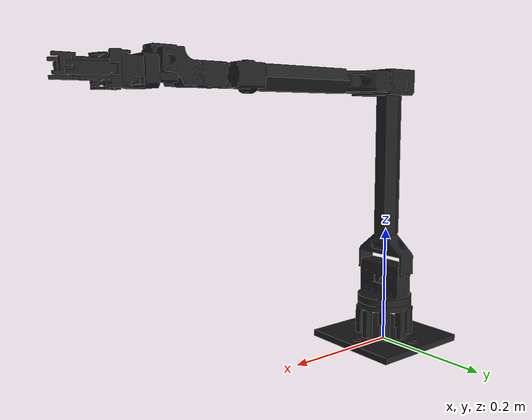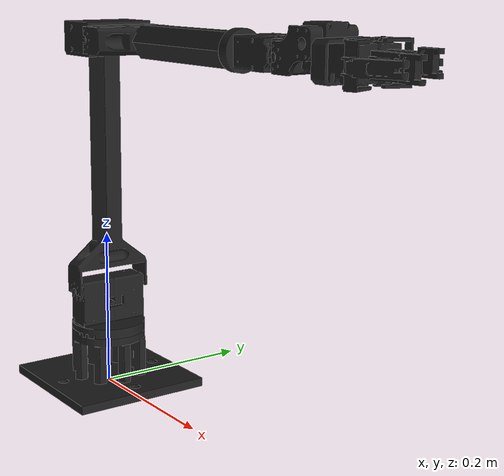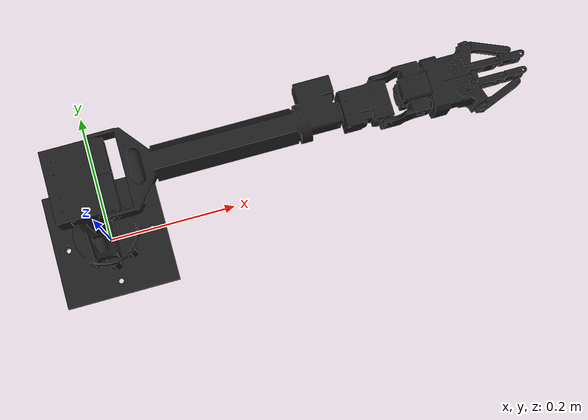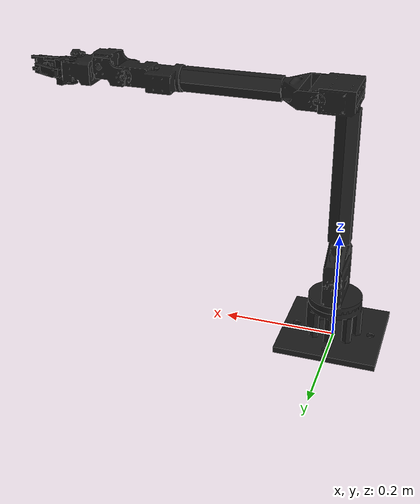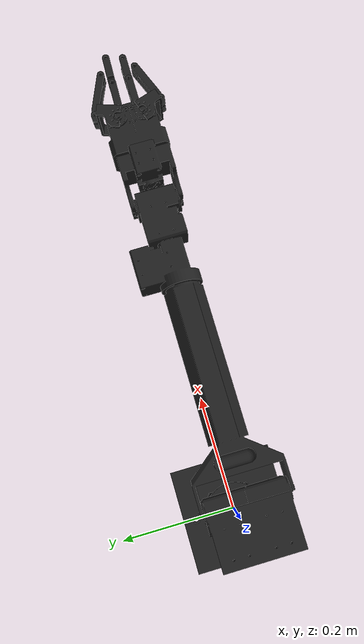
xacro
<?xml version="1.0"?>
<robot name="xm540arm" xmlns:xacro="http://ros.org/wiki/xacro">

  <xacro:arg name="robot_name" default = "xm540arm"/>
  <xacro:arg name="base_link_frame" default="base_link"/>
  <xacro:arg name="show_ar_tag" default="false"/>
  <xacro:arg name="show_gripper_bar" default="true"/>
  <xacro:arg name="show_gripper_fingers" default="false"/>
  <xacro:arg name="use_world_frame" default="true"/>
  <xacro:arg name="external_urdf_loc" default=""/>
  <xacro:arg name="load_gazebo_configs" default="false"/>

  <xacro:property name="urdf_loc" value="$(arg external_urdf_loc)"/>
  <xacro:property name="pi_offset" value="0.00001"/>

  <xacro:if value="$(arg load_gazebo_configs)">
    <xacro:include filename="$(find interbotix_xsarm_gazebo)/config/interbotix_texture.gazebo"/>
  </xacro:if>

  <material name="interbotix_black">
    <texture filename="package://interbotix_xsarm_descriptions/meshes/interbotix_black.png"/>
  </material>

  <xacro:if value="$(arg use_world_frame)">
    <link name="world"/>
    <joint name="fixed" type="fixed">
      <parent link="world"/>
      <child link="$(arg robot_name)/$(arg base_link_frame)"/>
    </joint>
  </xacro:if>

  <link name="$(arg robot_name)/$(arg base_link_frame)">
    <visual>
      <origin rpy="0 0 ${pi/2}" xyz="0.08895 -0.08895 0"/>
      <geometry>
        <mesh filename="package://interbotix_xsarm_descriptions/meshes/xm540arm_meshes/xm540arm_1_base.stl" scale="0.001 0.001 0.001"/>
      </geometry>
      <material name="interbotix_black"/>
    </visual>
    <collision>
      <origin rpy="0 0 ${pi/2}" xyz="0.08895 -0.08895 0"/>
      <geometry>
        <mesh filename="package://interbotix_xsarm_descriptions/meshes/xm540arm_meshes/xm540arm_1_base.stl" scale="0.001 0.001 0.001"/>
      </geometry>
    </collision>
    <inertial>
      <origin rpy="0 0 ${pi/2}" xyz="-0.0534774000 -0.0005625750 0.0205961000"/>
      <mass value="0.969034" />
      <inertia ixx="0.0060240000" iyy="0.0017000000" izz="0.0071620000" ixy="0.0000471300" ixz="0.0000038510" iyz="-0.0000841500" />
    </inertial>
  </link>

  <joint name="waist" type="revolute">
    <axis xyz="0 0 1"/>
    <limit effort="10" lower="${-pi + pi_offset}" upper="${pi - pi_offset}" velocity="${pi}"/>
    <origin rpy="0 0 0" xyz="0 0 0.079"/>
    <parent link="$(arg robot_name)/$(arg base_link_frame)"/>
    <child link="$(arg robot_name)/shoulder_link"/>
    <dynamics friction="0.1"/>
  </joint>

  <transmission name="trans_waist">
    <type>transmission_interface/SimpleTransmission</type>
    <joint name="waist">
      <hardwareInterface>hardware_interface/EffortJointInterface</hardwareInterface>
    </joint>
    <actuator name="waist_motor">
      <mechanicalReduction>1</mechanicalReduction>
    </actuator>
  </transmission>

  <link name="$(arg robot_name)/shoulder_link">
    <visual>
      <origin rpy="0 0 ${pi/2}" xyz="0.0479 -0.05155 -0.079"/>
      <geometry>
        <mesh filename="package://interbotix_xsarm_descriptions/meshes/xm540arm_meshes/xm540arm_2_shoulder.stl" scale="0.001 0.001 0.001"/>
      </geometry>
      <material name="interbotix_black"/>
    </visual>
    <collision>
      <origin rpy="0 0 ${pi/2}" xyz="0.0479 -0.05155 -0.079"/>
      <geometry>
        <mesh filename="package://interbotix_xsarm_descriptions/meshes/xm540arm_meshes/xm540arm_2_shoulder.stl" scale="0.001 0.001 0.001"/>
      </geometry>
    </collision>
    <inertial>
      <origin rpy="0 0 ${pi/2}" xyz="0.0002592330 -0.0000033552 0.0116129000"/>
      <mass value="0.798614" />
      <inertia ixx="0.0009388000" iyy="0.0011380000" izz="0.0012010000" ixy="-0.0000000010" ixz="-0.0000000191" iyz="0.0000059568" />
    </inertial>
  </link>

  <joint name="shoulder" type="revolute">
    <axis xyz="0 1 0"/>
    <limit effort="20" lower="${radians(-106)}" upper="${radians(72)}" velocity="${pi}"/>
    <origin rpy="0 0 0" xyz="0 0 0.04805"/>
    <parent link="$(arg robot_name)/shoulder_link"/>
    <child link="$(arg robot_name)/upper_arm_link"/>
    <dynamics friction="0.1"/>
  </joint>

  <transmission name="trans_shoulder">
    <type>transmission_interface/SimpleTransmission</type>
    <joint name="shoulder">
      <hardwareInterface>hardware_interface/EffortJointInterface</hardwareInterface>
    </joint>
    <actuator name="shoulder_motor">
      <mechanicalReduction>1</mechanicalReduction>
    </actuator>
  </transmission>

  <link name="$(arg robot_name)/upper_arm_link">
    <visual>
      <origin rpy="0 ${pi} ${pi/2}" xyz="0.05842 0.05025 0.34455"/>
      <geometry>
        <mesh filename="package://interbotix_xsarm_descriptions/meshes/xm540arm_meshes/xm540arm_3_upper_arm.stl" scale="0.001 0.001 0.001"/>
      </geometry>
      <material name="interbotix_black"/>
    </visual>
    <collision>
      <origin rpy="0 ${pi} ${pi/2}" xyz="0.05842 0.05025 0.34455"/>
      <geometry>
        <mesh filename="package://interbotix_xsarm_descriptions/meshes/xm540arm_meshes/xm540arm_3_upper_arm.stl" scale="0.001 0.001 0.001"/>
      </geometry>
    </collision>
    <inertial>
      <origin rpy="0 0 ${pi/2}" xyz="0.0206949000 0.0000000004 0.2264590000"/>
      <mass value="0.792592" />
      <inertia ixx="0.0089250000" iyy="0.0089370000" izz="0.0009357000" ixy="0.0000000000" ixz="0.0000000000" iyz="0.0012010000" />
    </inertial>
  </link>

  <joint name="elbow" type="revolute">
    <axis xyz="0 1 0"/>
    <limit effort="15" lower="${radians(-101)}" upper="${radians(92)}" velocity="${pi}"/>
    <origin rpy="0 0 0" xyz="0.043 0 0.325"/>
    <parent link="$(arg robot_name)/upper_arm_link"/>
    <child link="$(arg robot_name)/upper_forearm_link"/>
    <dynamics friction="0.1"/>
  </joint>

  <transmission name="trans_elbow">
    <type>transmission_interface/SimpleTransmission</type>
    <joint name="elbow">
      <hardwareInterface>hardware_interface/EffortJointInterface</hardwareInterface>
    </joint>
    <actuator name="elbow_motor">
      <mechanicalReduction>1</mechanicalReduction>
    </actuator>
  </transmission>

  <link name="$(arg robot_name)/upper_forearm_link">
    <visual>
      <origin rpy="${pi/2} 0 ${pi/2}" xyz="-0.0006 -0.05162 -0.020"/>
      <geometry>
        <mesh filename="package://interbotix_xsarm_descriptions/meshes/xm540arm_meshes/xm540arm_4_upper_forearm.stl" scale="0.001 0.001 0.001"/>
      </geometry>
      <material name="interbotix_black"/>
    </visual>
    <collision>
      <origin rpy="${pi/2} 0 ${pi/2}" xyz="-0.0006 -0.05162 -0.020"/>
      <geometry>
        <mesh filename="package://interbotix_xsarm_descriptions/meshes/xm540arm_meshes/xm540arm_4_upper_forearm.stl" scale="0.001 0.001 0.001"/>
      </geometry>
    </collision>
    <inertial>
      <origin rpy="0 0 0" xyz="0.105723 0 0"/>
      <mass value="0.322228" />
      <inertia ixx="0.0001524000" iyy="0.0013420000" izz="0.0014410000" ixy="-0.0000188300" ixz="-0.0000084064" iyz="0.0000012564" />
    </inertial>
  </link>

  <joint name="forearm_roll" type="revolute">
    <axis xyz="1 0 0"/>
    <limit effort="2" lower="${-pi + pi_offset}" upper="${pi - pi_offset}" velocity="${pi}"/>
    <origin rpy="0 0 0" xyz="0.23775 0 0"/>
    <parent link="$(arg robot_name)/upper_forearm_link"/>
    <child link="$(arg robot_name)/lower_forearm_link"/>
    <dynamics friction="0.1"/>
  </joint>

  <transmission name="trans_forearm_roll">
    <type>transmission_interface/SimpleTransmission</type>
    <joint name="forearm_roll">
      <hardwareInterface>hardware_interface/EffortJointInterface</hardwareInterface>
    </joint>
    <actuator name="forearm_roll_motor">
      <mechanicalReduction>1</mechanicalReduction>
    </actuator>
  </transmission>

  <link name="$(arg robot_name)/lower_forearm_link">
    <visual>
      <origin rpy="${pi/2} ${pi} ${-pi/2}" xyz="0.113 -0.02617 0.0223"/>
      <geometry>
        <mesh filename="package://interbotix_xsarm_descriptions/meshes/xm540arm_meshes/xm540arm_5_lower_forearm.stl" scale="0.001 0.001 0.001"/>
      </geometry>
      <material name="interbotix_black"/>
    </visual>
    <collision>
      <origin rpy="${pi/2} ${pi} ${-pi/2}" xyz="0.113 -0.02617 0.0223"/>
      <geometry>
        <mesh filename="package://interbotix_xsarm_descriptions/meshes/xm540arm_meshes/xm540arm_5_lower_forearm.stl" scale="0.001 0.001 0.001"/>
      </geometry>
    </collision>
    <inertial>
      <origin rpy="${pi} 0 0" xyz="0.0513477000 0.0068046200 0"/>
      <mass value="0.414823" />
      <inertia ixx="0.0001753000" iyy="0.0005269000" izz="0.0005911000" ixy="-0.0000852800" ixz="0" iyz="0" />
    </inertial>
  </link>

  <joint name="wrist_angle" type="revolute">
    <axis xyz="0 1 0"/>
    <limit effort="5" lower="${radians(-107)}" upper="${radians(128)}" velocity="${pi}"/>
    <origin rpy="0 0 0" xyz="0.1 0 0"/>
    <parent link="$(arg robot_name)/lower_forearm_link"/>
    <child link="$(arg robot_name)/wrist_link"/>
    <dynamics friction="0.1"/>
  </joint>

  <transmission name="trans_wrist_angle">
    <type>transmission_interface/SimpleTransmission</type>
    <joint name="wrist_angle">
      <hardwareInterface>hardware_interface/EffortJointInterface</hardwareInterface>
    </joint>
    <actuator name="wrist_angle_motor">
      <mechanicalReduction>1</mechanicalReduction>
    </actuator>
  </transmission>

  <link name="$(arg robot_name)/wrist_link">
    <visual>
      <origin rpy="${-pi/2} ${-pi/1} 0" xyz="0.065 -0.03055 -0.0168"/>
      <geometry>
        <mesh filename="package://interbotix_xsarm_descriptions/meshes/xm540arm_meshes/xm540arm_6_wrist.stl" scale="0.001 0.001 0.001"/>
      </geometry>
      <material name="interbotix_black"/>
    </visual>
    <collision>
      <origin rpy="${-pi/2} ${-pi/1} 0" xyz="0.065 -0.03055 -0.0168"/>
      <geometry>
        <mesh filename="package://interbotix_xsarm_descriptions/meshes/xm540arm_meshes/xm540arm_6_wrist.stl" scale="0.001 0.001 0.001"/>
      </geometry>
    </collision>
    <inertial>
      <origin rpy="${-pi/2} ${-pi/1} 0" xyz="0.0467430000 -0.0000076652 0.0105650000"/>
      <mass value="0.115395" />
      <inertia ixx="0.0000463100" iyy="0.0000451400" izz="0.0000527000" ixy="0.0000000195" ixz="0.0000000023" iyz="0.0000042002" />
    </inertial>
  </link>

  <joint name="wrist_rotate" type="revolute">
    <axis xyz="1 0 0"/>
    <limit effort="1" lower="${-pi + pi_offset}" upper="${pi - pi_offset}" velocity="${pi}"/>
    <origin rpy="0 0 0" xyz="0.069744 -0.001 0"/>
    <parent link="$(arg robot_name)/wrist_link"/>
    <child link="$(arg robot_name)/gripper_link"/>
    <dynamics friction="0.1"/>
  </joint>

  <transmission name="trans_wrist_rotate">
    <type>transmission_interface/SimpleTransmission</type>
    <joint name="wrist_rotate">
      <hardwareInterface>hardware_interface/EffortJointInterface</hardwareInterface>
    </joint>
    <actuator name="wrist_rotate_motor">
      <mechanicalReduction>1</mechanicalReduction>
    </actuator>
  </transmission>

  <link name="$(arg robot_name)/gripper_link">
    <visual>
      <origin rpy="${pi/2} 0 ${pi/2}" xyz="-0.0128 -0.03255 -0.0214"/>
      <geometry>
        <mesh filename="package://interbotix_xsarm_descriptions/meshes/xm540arm_meshes/xm540arm_7_gripper.stl" scale="0.001 0.001 0.001"/>
      </geometry>
      <material name="interbotix_black"/>
    </visual>
    <collision>
      <origin rpy="${pi/2} 0 ${pi/2}" xyz="-0.0128 -0.03255 -0.0214"/>
      <geometry>
        <mesh filename="package://interbotix_xsarm_descriptions/meshes/xm540arm_meshes/xm540arm_7_gripper.stl" scale="0.001 0.001 0.001"/>
      </geometry>
    </collision>
    <inertial>
      <origin rpy="${pi/2} 0 ${pi/2}" xyz="0.0230010000 0.0000000000 0.0115230000"/>
      <mass value="0.097666" />
      <inertia ixx="0.0000326800" iyy="0.0000243600" izz="0.0000211900" ixy="0.0000000000" ixz="0.0000000000" iyz="0.0000002785" />
    </inertial>
  </link>

  <joint name="ee_arm" type="fixed">
     <axis xyz="1 0 0"/>
     <origin rpy="0 0 0" xyz="0.042825 0 0"/>
     <parent link="$(arg robot_name)/gripper_link"/>
     <child link="$(arg robot_name)/ee_arm_link"/>
  </joint>

  <link name="$(arg robot_name)/ee_arm_link">
     <inertial>
       <mass value="0.001" />
       <inertia ixx="0.0001" iyy="0.0001" izz="0.0001" ixy="0" ixz="0" iyz="0" />
     </inertial>
  </link>

  <joint name="gripper" type="revolute">
      <axis xyz="0 0 1"/>
     <limit effort="3.0" lower="0" upper="0.85" velocity="2"/>
      <origin rpy="0 0 0" xyz="-0.011 0.0145 0"/>
      <parent link="$(arg robot_name)/ee_arm_link"/>
      <child link="$(arg robot_name)/LH_gripper_prop_link"/>
      <dynamics friction="0.1"/>
  </joint>

  <transmission name="trans_gripper">
    <type>transmission_interface/SimpleTransmission</type>
    <joint name="gripper">
      <hardwareInterface>hardware_interface/EffortJointInterface</hardwareInterface>
    </joint>
    <actuator name="gripper_motor">
      <mechanicalReduction>1</mechanicalReduction>
    </actuator>
  </transmission>

  <link name="$(arg robot_name)/LH_gripper_prop_link">
    <visual>
      <origin rpy="0 0 ${-pi/2} " xyz="-0.01226 0.0282 -0.0229"/>
      <geometry>
        <mesh filename="package://interbotix_xsarm_descriptions/meshes/xm540arm_meshes/xm540arm_8_LH_gripper_prop.stl" scale="0.001 0.001 0.001"/>
      </geometry>
      <material name="interbotix_black"/>
    </visual>
    <collision>
      <origin rpy="0 0 ${-pi/2} " xyz="-0.01226 0.0282 -0.0229"/>
      <geometry>
        <mesh filename="package://interbotix_xsarm_descriptions/meshes/xm540arm_meshes/xm540arm_8_LH_gripper_prop.stl" scale="0.001 0.001 0.001"/>
      </geometry>
    </collision>
    <inertial>
      <origin rpy="0 0 ${-pi/2} " xyz="0.00 0.00 0.00"/>
      <mass value="0.004282" />
      <inertia ixx="1.67E-06" iyy="5.06E-07" izz="1.51E-06" ixy="2.87E-11" ixz="9.94E-08" iyz="-1.48E-10" />
    </inertial>
  </link>

  <joint name="gripper1" type="revolute">
      <axis xyz="0 0 1"/>
      <limit effort="3.0" lower="0" upper="0.85" velocity="2"/>
      <origin rpy="0 0 0" xyz="-0.011 -0.0145 0"/>
      <parent link="$(arg robot_name)/ee_arm_link"/>
      <child link="$(arg robot_name)/RH_gripper_prop_link"/>
      <mimic joint="gripper" multiplier="-1" offset="0"/>
      <dynamics friction="0.1"/>
  </joint>

  <link name="$(arg robot_name)/RH_gripper_prop_link">
    <visual>
      <origin rpy="0 0 ${-pi/2}" xyz="-0.01226 0.0065 -0.02305"/>
      <geometry>
        <mesh filename="package://interbotix_xsarm_descriptions/meshes/xm540arm_meshes/xm540arm_8_RH_gripper_prop.stl" scale="0.001 0.001 0.001"/>
      </geometry>
      <material name="interbotix_black"/>
    </visual>
    <collision>
      <origin rpy="0 0 ${-pi/2}" xyz="-0.0122 0.0065 -0.02305"/>
      <geometry>
        <mesh filename="package://interbotix_xsarm_descriptions/meshes/xm540arm_meshes/xm540arm_8_RH_gripper_prop.stl" scale="0.001 0.001 0.001"/>
      </geometry>
    </collision>
    <inertial>
      <origin rpy="0 0 ${-pi/2}" xyz="0.00 0.00 0.00"/>
      <mass value="0.004282" />
      <inertia ixx="1.67E-06" iyy="5.06E-07" izz="1.51E-06" ixy="2.87E-11" ixz="9.94E-08" iyz="-1.48E-10" />
    </inertial>
  </link>

  <joint name="LH_outside_finger_link" type="continuous">
      <axis xyz="0 0 1"/>
      <limit effort="50.0" lower="0" upper="0.85" velocity="2"/>
      <origin rpy="0 0 0" xyz="0.0182 0.02409 0"/>
      <parent link="$(arg robot_name)/LH_gripper_prop_link"/>
      <child link="$(arg robot_name)/LH_outside_link"/>
      <mimic joint="gripper1" multiplier="-1" offset="0"/>
      <dynamics friction="0.5"/>
  </joint>

  <link name="$(arg robot_name)/LH_outside_link">
    <visual>
      <origin rpy="0 0 ${-pi/2} " xyz="-0.02194 0.0043 -0.0229"/>
      <geometry>
        <mesh filename="package://interbotix_xsarm_descriptions/meshes/xm540arm_meshes/xm540arm_10_LH_outside_link.stl" scale="0.001 0.001 0.001"/>
      </geometry>
      <material name="interbotix_black"/>
    </visual>
    <collision>
      <origin rpy="0 0 ${-pi/2} " xyz="-0.02194 0.0043 -0.0229"/>
      <geometry>
        <mesh filename="package://interbotix_xsarm_descriptions/meshes/xm540arm_meshes/xm540arm_10_LH_outside_link.stl" scale="0.001 0.001 0.001"/>
      </geometry>
    </collision>
    <inertial>
      <origin rpy="0 0 ${-pi/2} " xyz="0.00 0.00 0.00"/>
      <mass value="0.005217" />
      <inertia ixx="1.45E-06" iyy="1.36E-06" izz="1.55E-07" ixy="1.05E-12" ixz="-2.34E-08" iyz="8.98E-11" />
    </inertial>
  </link>

  <joint name="RH_outside_finger_link" type="continuous">
      <axis xyz="0 0 1"/>
      <limit effort="50.0" lower="0" upper="0.85" velocity="2"/>
      <origin rpy="0 0 0" xyz="0.01782 -0.0243 0"/>
      <parent link="$(arg robot_name)/RH_gripper_prop_link"/>
      <child link="$(arg robot_name)/RH_outside_link"/>
      <mimic joint="gripper" multiplier="-1" offset="0"/>
      <dynamics friction="0.5"/>
  </joint>

  <link name="$(arg robot_name)/RH_outside_link">
    <visual>
      <origin rpy="0 0 ${-pi/2} " xyz="-0.02198 0.02231 -0.0229"/>
      <geometry>
        <mesh filename="package://interbotix_xsarm_descriptions/meshes/xm540arm_meshes/xm540arm_10_RH_outside_link.stl" scale="0.001 0.001 0.001"/>
      </geometry>
      <material name="interbotix_black"/>
    </visual>
    <collision>
      <origin rpy="0 0 ${-pi/2} " xyz="-0.02198 0.02231 -0.0229"/>
      <geometry>
        <mesh filename="package://interbotix_xsarm_descriptions/meshes/xm540arm_meshes/xm540arm_10_RH_outside_link.stl" scale="0.001 0.001 0.001"/>
      </geometry>
    </collision>
    <inertial>
      <origin rpy="0 0 ${-pi/2} " xyz="0.00 0.00 0.00"/>
      <mass value="0.005217" />
      <inertia ixx="1.45E-06" iyy="1.36E-06" izz="1.55E-07" ixy="1.05E-12" ixz="-2.34E-08" iyz="8.98E-11" />
    </inertial>
  </link>

  <xacro:if value="$(arg show_gripper_bar)">

    <joint name="gripper_center_support" type="fixed">
      <axis xyz="0 1 0"/>
      <origin rpy="0 0 0" xyz="0.005 0 0"/>
      <parent link="$(arg robot_name)/ee_arm_link"/>
      <child link="$(arg robot_name)/gripper_center_support_link"/>
    </joint>

    <link name="$(arg robot_name)/gripper_center_support_link">
      <visual>
       <origin rpy="${pi} ${pi} ${pi/2}" xyz="-0.0203 0.013 -0.0232"/>
       <geometry>
         <mesh filename="package://interbotix_xsarm_descriptions/meshes/xm540arm_meshes/xm540arm_9_gripper_center_support.stl" scale="0.001 0.001 0.001"/>
       </geometry>
       <material name="interbotix_black"/>
      </visual>
      <collision>
       <origin rpy="${pi} ${pi} ${pi/2}" xyz="-0.0203 0.013 -0.0232"/>
        <geometry>
         <mesh filename="package://interbotix_xsarm_descriptions/meshes/xm540arm_meshes/xm540arm_9_gripper_center_support.stl" scale="0.001 0.001 0.001"/>
       </geometry>
      </collision>
      <inertial>
       <origin rpy="${pi} ${pi} ${-pi/2}" xyz="0.00 -0.00 -0.00"/>
       <mass value="0.003389" />
       <inertia ixx="0.0000789500" iyy="0.0003283000" izz="0.0003095000" ixy="-0.0000000012" ixz="0.0000001341" iyz="0.0000017465" />
      </inertial>
    </link>

    <joint name="LH_inside_lower" type="continuous">
      <axis xyz="0 0 1"/>
      <limit effort="50.0" lower="0" upper="0.85" velocity="2"/>
      <origin rpy="0 0 0" xyz="0.0011 0.0103 0.0019"/>
      <parent link="$(arg robot_name)/gripper_center_support_link"/>
      <child link="$(arg robot_name)/LH_inside_lower_link"/>
      <mimic joint="gripper1" multiplier="-1" offset="0"/>
      <dynamics friction="0.5"/>
    </joint>

    <link name="$(arg robot_name)/LH_inside_lower_link">
     <visual>
       <origin rpy="0 0 ${-pi/2}" xyz="-0.0217 0.0039 -0.0241"/>
       <geometry>
         <mesh filename="package://interbotix_xsarm_descriptions/meshes/xm540arm_meshes/xm540arm_11_LH_inside_lower_link.stl" scale="0.001 0.001 0.001"/>
        </geometry>
        <material name="interbotix_black"/>
      </visual>
      <collision>
        <origin rpy="0 0 ${-pi/2}" xyz="-0.0217 0.0039 -0.0241"/>
        <geometry>
          <mesh filename="package://interbotix_xsarm_descriptions/meshes/xm540arm_meshes/xm540arm_11_LH_inside_lower_link.stl" scale="0.001 0.001 0.001"/>
        </geometry>
      </collision>
      <inertial>
        <origin rpy="0 0 ${-pi/2}" xyz="0.00 -0.00 -0.00"/>
        <mass value="0.003051" />
        <inertia ixx="0.0000789500" iyy="0.0003283000" izz="0.0003095000" ixy="-0.0000000012" ixz="0.0000001341" iyz="0.0000017465" />
      </inertial>
    </link>

    <joint name="RH_inside_lower" type="continuous">
      <axis xyz="0 0 1"/>
      <limit effort="50.0" lower="0" upper="0.85" velocity="2"/>
      <origin rpy="0 0 0" xyz="0.0011 -0.01 0.0014"/>
      <parent link="$(arg robot_name)/gripper_center_support_link"/>
      <child link="$(arg robot_name)/RH_inside_lower_link"/>
      <mimic joint="gripper" multiplier="-1" offset="0"/>
      <dynamics friction="0.5"/>
    </joint>

    <link name="$(arg robot_name)/RH_inside_lower_link">
      <visual>
       <origin rpy="${pi} ${pi} ${pi/2}" xyz="-0.0215 0.0041 -0.024"/>
       <geometry>
         <mesh filename="package://interbotix_xsarm_descriptions/meshes/xm540arm_meshes/xm540arm_11_RH_inside_lower_link.stl" scale="0.001 0.001 0.001"/>
       </geometry>
       <material name="interbotix_black"/>
      </visual>
      <collision>
       <origin rpy="${pi} ${pi} ${pi/2}" xyz="-0.0215 0.0041 -0.024"/>
       <geometry>
        <mesh filename="package://interbotix_xsarm_descriptions/meshes/xm540arm_meshes/xm540arm_11_RH_inside_lower_link.stl" scale="0.001 0.001 0.001"/>
       </geometry>
      </collision>
      <inertial>
       <origin rpy="0 0 ${-pi/2}" xyz="0.00 -0.00 -0.00"/>
       <mass value="0.003051" />
       <inertia ixx="0.0000243300" iyy="0.0000125500" izz="0.0000141700" ixy="-0.0000024004" ixz="0.0000000000" iyz="0.0000000000" />
     </inertial>
    </link>

    <joint name="LH_inside_top" type="continuous">
      <axis xyz="0 0 1"/>
      <limit effort="50.0" lower="0" upper="0.85" velocity="2"/>
      <origin rpy="0 0 0" xyz="0.0297 -0.001 0"/>
      <parent link="$(arg robot_name)/LH_inside_lower_link"/>
      <child link="$(arg robot_name)/LH_inside_top_link"/>
      <mimic joint="gripper1" multiplier="-1" offset="0"/>
      <dynamics friction="0.5"/>
    </joint>

    <link name="$(arg robot_name)/LH_inside_top_link">
     <visual>
      <origin rpy="0 0 ${-pi/2}" xyz="-0.05 0.0044 -0.01989"/>
      <geometry>
        <mesh filename="package://interbotix_xsarm_descriptions/meshes/xm540arm_meshes/xm540arm_12_LH_inside_top_link.stl" scale="0.001 0.001 0.001"/>
      </geometry>
      <material name="interbotix_black"/>
     </visual>
     <collision>
      <origin rpy="0 0 ${-pi/2}" xyz="-0.05 0.0044 -0.01989"/>
      <geometry>
        <mesh filename="package://interbotix_xsarm_descriptions/meshes/xm540arm_meshes/xm540arm_12_LH_inside_top_link.stl" scale="0.001 0.001 0.001"/>
      </geometry>
     </collision>
     <inertial>
      <origin rpy="0 0 ${-pi/2}" xyz="0.00 -0.00 -0.00"/>
      <mass value="0.003353" />
      <inertia ixx="0.0000789500" iyy="0.0003283000" izz="0.0003095000" ixy="-0.0000000012" ixz="0.0000001341" iyz="0.0000017465" />
     </inertial>
    </link>

    <joint name="RH_inside_top" type="continuous">
      <axis xyz="0 0 1"/>
      <limit effort="50.0" lower="0" upper="0.85" velocity="2"/>
      <origin rpy="0 0 0" xyz="0.0279 -0.0001 0"/>
      <parent link="$(arg robot_name)/RH_inside_lower_link"/>
      <child link="$(arg robot_name)/RH_inside_top_link"/>
      <mimic joint="gripper" multiplier="-1" offset="0"/>
      <dynamics friction="0.5"/>
    </joint>

    <link name="$(arg robot_name)/RH_inside_top_link">
     <visual>
      <origin rpy="0 0 ${-pi/2}" xyz="-0.05 0.0044 -0.024"/>
      <geometry>
        <mesh filename="package://interbotix_xsarm_descriptions/meshes/xm540arm_meshes/xm540arm_12_RH_inside_top_link.stl" scale="0.001 0.001 0.001"/>
      </geometry>
      <material name="interbotix_black"/>
     </visual>
     <collision>
      <origin rpy="0 0 ${-pi/2}" xyz="-0.05 0.0044 -0.024"/>
      <geometry>
        <mesh filename="package://interbotix_xsarm_descriptions/meshes/xm540arm_meshes/xm540arm_12_RH_inside_top_link.stl" scale="0.001 0.001 0.001"/>
      </geometry>
     </collision>
     <inertial>
      <origin rpy="0 0 ${-pi/2}" xyz="0.00 -0.00 -0.00"/>
      <mass value="0.003353" />
      <inertia ixx="0.0000789500" iyy="0.0003283000" izz="0.0003095000" ixy="-0.0000000012" ixz="0.0000001341" iyz="0.0000017465" />
     </inertial>
    </link>

    <joint name="ee_bar" type="fixed">
      <axis xyz="1 0 0"/>
      <origin rpy="0 0 0" xyz="0.04875 0 0"/>
      <parent link="$(arg robot_name)/gripper_center_support_link"/>
      <child link="$(arg robot_name)/fingers_link"/>
    </joint>

    <link name="$(arg robot_name)/fingers_link">
      <inertial>
        <mass value="0.001" />
        <inertia ixx="0.0001" iyy="0.0001" izz="0.0001" ixy="0" ixz="0" iyz="0" />
      </inertial>
    </link>

 <!-- If the gripper fingers are being used, add those as well -->

    <xacro:if value="$(arg show_gripper_fingers)">

     <joint name="left_finger" type="continuous">
       <axis xyz="0 0 1"/>
       <limit effort="50.0" lower="0" upper="0.85" velocity="2"/>
       <origin rpy="${pi} ${pi} ${pi}" xyz="0.0455 -0.0191 -0.0014"/>
       <parent link="$(arg robot_name)/LH_outside_link"/>
       <child link="$(arg robot_name)/left_finger_link"/>
       <mimic joint="gripper" multiplier="-2" offset="0"/>
       <dynamics friction="0.5"/>
     </joint>

     <link name="$(arg robot_name)/left_finger_link">
      <visual>
        <origin rpy="${pi} ${pi} ${pi/2}" xyz="-0.068 0.0071 -0.021"/>
        <geometry>
          <mesh filename="package://interbotix_xsarm_descriptions/meshes/xm540arm_meshes/xm540arm_0_left_finger.stl" scale="0.001 0.001 0.001"/>
        </geometry>
        <material name="interbotix_black"/>
      </visual>
      <collision>
        <origin rpy="${pi} ${pi} ${pi/2}" xyz="-0.068 0.0071 -0.021"/>
        <geometry>
          <mesh filename="package://interbotix_xsarm_descriptions/meshes/xm540arm_meshes/xm540arm_0_left_finger.stl" scale="0.001 0.001 0.001"/>
        </geometry>
      </collision>
      <inertial>
        <origin rpy="${pi} ${pi} ${pi/2}" xyz="-0.00 0.00 -0.00"/>
        <mass value="0.012202" />
        <inertia ixx="3.95E-06" iyy="03.56E-06" izz="1.05E-06" ixy="-1.68E-10" ixz="5.29E-07" iyz="9.59E-10" />
      </inertial>
     </link>

     <joint name="right_finger" type="continuous">
       <axis xyz="0 0 1"/>
       <limit effort="50.0" lower="0" upper="0.85" velocity="2"/>
       <origin rpy="${pi} ${pi} ${pi}" xyz="0.0455 0.0187 -0.0014"/>
       <parent link="$(arg robot_name)/RH_outside_link"/>
       <child link="$(arg robot_name)/right_finger_link"/>
       <mimic joint="gripper1" multiplier="-2" offset="0"/>
       <dynamics friction="0.5"/>
     </joint>

     <link name="$(arg robot_name)/right_finger_link">
      <visual>
        <origin rpy="${pi} ${pi} ${pi/2}" xyz="-0.0678 0.0145 -0.0228"/>
        <geometry>
          <mesh filename="package://interbotix_xsarm_descriptions/meshes/xm540arm_meshes/xm540arm_0_right_finger.stl" scale="0.001 0.001 0.001"/>
        </geometry>
        <material name="interbotix_black"/>
      </visual>
      <collision>
        <origin rpy="${pi} ${pi} ${pi/2}" xyz="-0.0678 0.0145 -0.0228"/>
        <geometry>
          <mesh filename="package://interbotix_xsarm_descriptions/meshes/xm540arm_meshes/xm540arm_0_right_finger.stl" scale="0.001 0.001 0.001"/>
        </geometry>
      </collision>
      <inertial>
        <origin rpy="${pi} ${pi} ${pi/2}" xyz="-0.00 0.00 -0.00"/>
        <mass value="0.012202" />
        <inertia ixx="6.87E-06" iyy="6.36E-06" izz="1.38E-06" ixy="4.74E-09" ixz="7.41E-08" iyz="2.76E-08" />
      </inertial>
     </link>

     <joint name="ee_gripper" type="fixed">
       <axis xyz="1 0 0"/>
       <origin rpy="0 0 0" xyz="0.038 0 0"/>
       <parent link="$(arg robot_name)/fingers_link"/>
       <child link="$(arg robot_name)/ee_gripper_link"/>
     </joint>

     <link name="$(arg robot_name)/ee_gripper_link">
       <inertial>
         <mass value="0.001" />
         <inertia ixx="0.0001" iyy="0.0001" izz="0.0001" ixy="0" ixz="0" iyz="0" />
       </inertial>
     </link>

    </xacro:if>

  </xacro:if>

  <xacro:if value="${urdf_loc != ''}">
    <xacro:include filename="${urdf_loc}"/>
  </xacro:if>

</robot>
